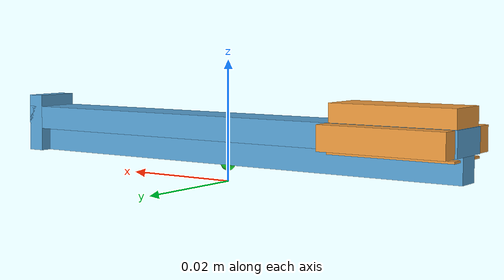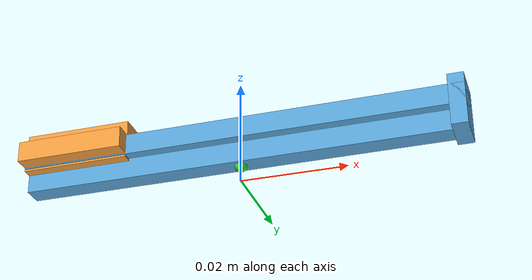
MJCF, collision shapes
<?xml version="1.0" ?>
<mujoco model="t2_slide_V-B">
  <compiler angle="radian" meshdir="assets" autolimits="true"/>
  <option timestep="0.0005" integrator="implicitfast" cone="elliptic" impratio="10"/>
  <visual>
    <headlight ambient="0.5 0.5 0.5" diffuse="0.6 0.6 0.6" specular="0.2 0.2 0.2"/>
    <global offwidth="1280" offheight="960" azimuth="140" elevation="-20"/>
  </visual>
  <default>
    <geom solref="0.001 1.0" solimp="0.99 0.9999 0.0001" friction="0.3 0.005 0.0001" condim="4" density="0"/>
  </default>
  <asset>
    <material name="base" rgba="0.35 0.65 0.85 1"/>
    <material name="mover" rgba="0.95 0.62 0.25 1"/>
    <material name="hardware" rgba="0.8 0.8 0.85 1"/>
    <material name="other" rgba="0.6 0.75 0.6 1"/>
    <mesh name="P1_vis" file="slide_P1_vis.stl"/>
    <mesh name="P2_vis" file="slide_P2_vis.stl"/>
  </asset>
  <worldbody>
    <light pos="0.15 -0.25 0.4" dir="-0.3 0.5 -1" directional="true" diffuse="0.5 0.5 0.5"/>
    <camera name="iso" pos="0.125 -0.125 0.115" xyaxes="0.707 0.707 0 -0.38 0.38 0.84"/>
    <body name="P1" pos="0 0 0">
      <inertial pos="0.000209845 0.000000000 0.002878238" mass="0.023530560" fullinertia="0.000002656125 0.000025351920 0.000027615348 0.000000000000 -0.000000027759 -0.000000000000"/>
      <geom name="P1_vis" type="mesh" mesh="P1_vis" contype="0" conaffinity="0" group="2" material="base"/>
      <geom name="P1_c0" type="box" pos="0.000000000 0.000000000 0.005000000" size="0.042000000 0.002000000 0.002000000" group="3" material="base" contype="2" conaffinity="2"/>
      <geom name="P1_c1" type="box" pos="0.000000000 0.000000000 0.009000000" size="0.042000000 0.004000000 0.002000000" group="3" material="base" contype="2" conaffinity="2"/>
      <geom name="P1_c2" type="box" pos="0.040500000 0.000000000 0.008000000" size="0.001500000 0.004000000 0.005000000" group="3" material="base" contype="2" conaffinity="2"/>
      <site name="axis_ref" pos="0.000000000 0.000000000 0.003000000" size="0.0012" rgba="0.1 0.9 0.2 1"/>
    </body>
    <body name="P2" pos="0 0 0">
      <freejoint name="P2_free"/>
      <inertial pos="-0.031500000 -0.000000000 0.009402155" mass="0.003038913" fullinertia="0.000000116326 0.000000153127 0.000000186559 -0.000000000000 -0.000000000000 -0.000000000000"/>
      <geom name="P2_vis" type="mesh" mesh="P2_vis" contype="0" conaffinity="0" group="2" material="mover"/>
      <geom name="P2_c0" type="box" pos="-0.031500000 0.000000000 0.012500000" size="0.010300000 0.003800000 0.001500000" group="3" material="mover" contype="2" conaffinity="2"/>
      <geom name="P2_c1" type="box" pos="-0.031500000 0.005850000 0.009000000" size="0.010300000 0.001500000 0.002000000" group="3" material="mover" contype="2" conaffinity="2"/>
      <geom name="P2_c2" type="box" pos="-0.031500000 -0.005850000 0.009000000" size="0.010300000 0.001500000 0.002000000" group="3" material="mover" contype="2" conaffinity="2"/>
      <geom name="P2_c3" type="box" pos="-0.031500000 0.003350000 0.006475000" size="0.010300000 0.001000000 0.000175000" group="3" material="mover" contype="2" conaffinity="2"/>
      <geom name="P2_c4" type="box" pos="-0.031500000 -0.003350000 0.006475000" size="0.010300000 0.001000000 0.000175000" group="3" material="mover" contype="2" conaffinity="2"/>
      <site name="pin_center" pos="0.000000000 0.000000000 0.003000000" size="0.0012" rgba="0.9 0.1 0.9 1"/>
    </body>
  </worldbody>
</mujoco>
